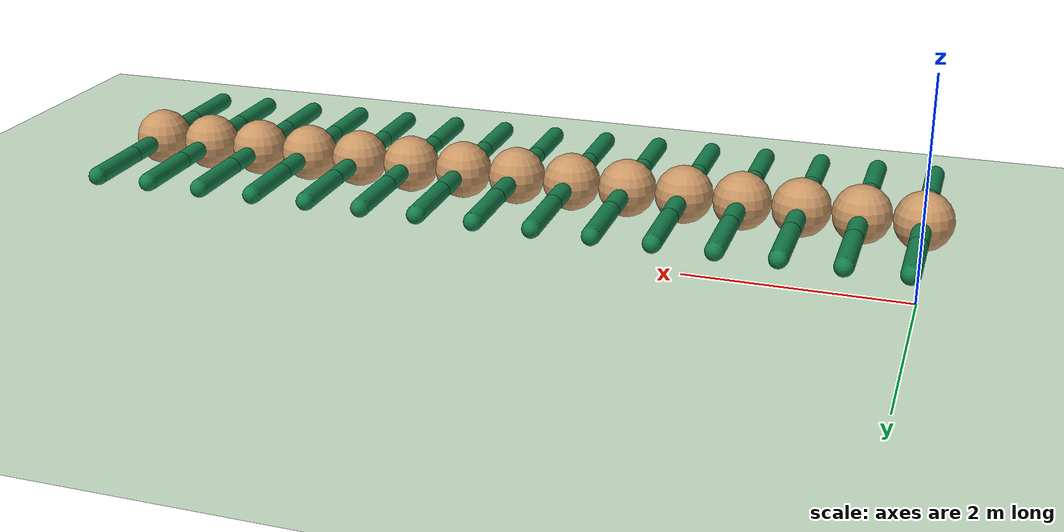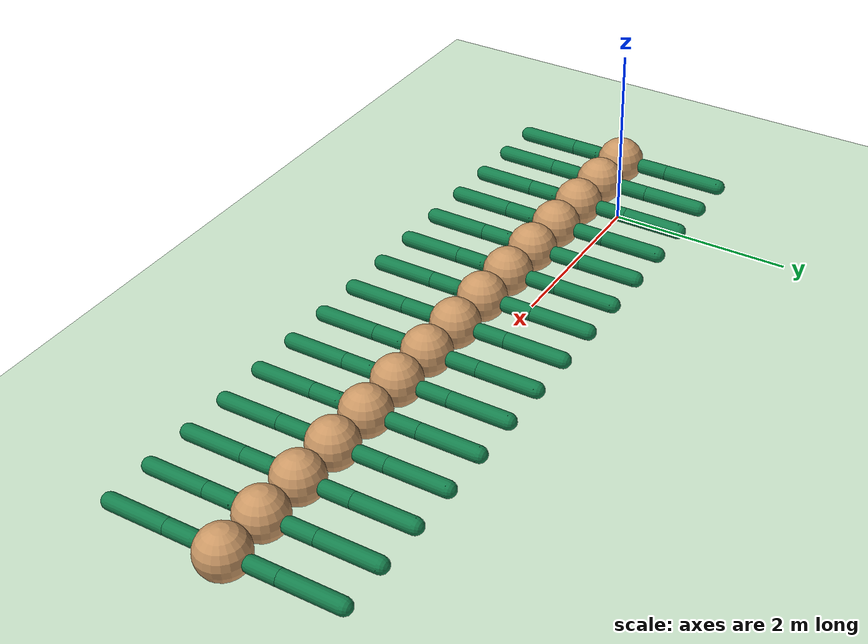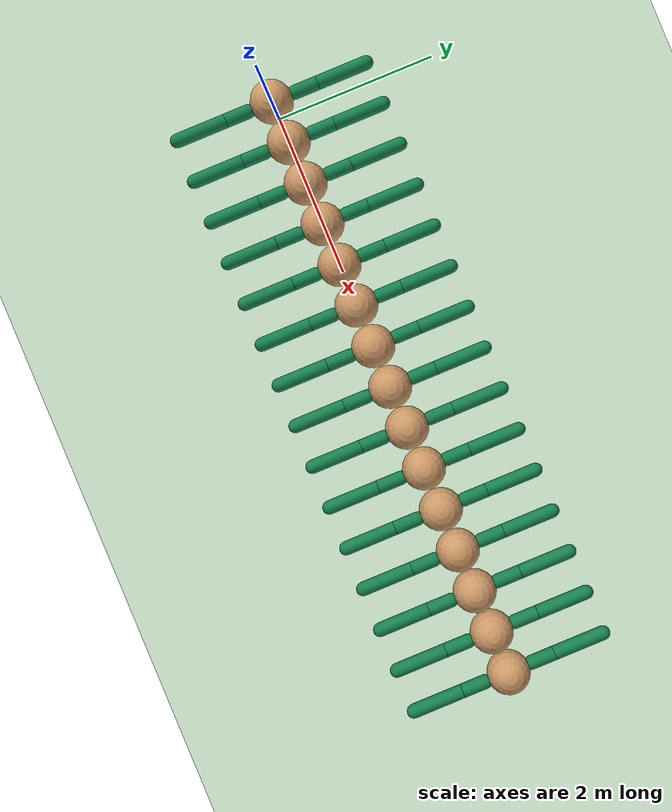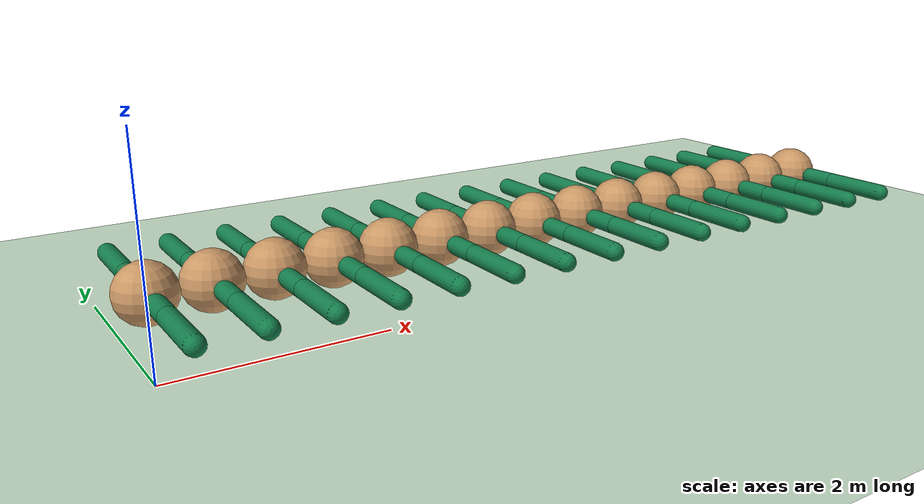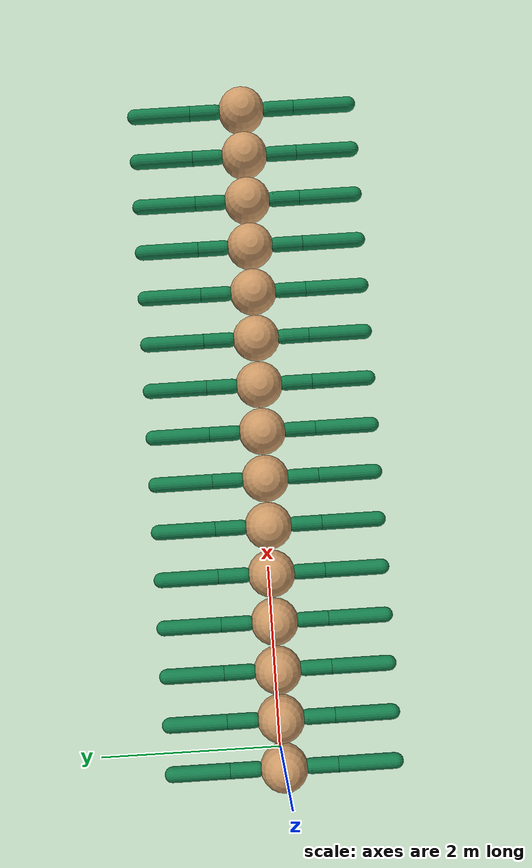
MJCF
<mujoco model="centipede">
    <compiler angle="degree" coordinate="local" inertiafromgeom="true"/>

    <option integrator="RK4" timestep="0.01"/>

    <default>
        <joint armature="1" damping="1" limited="true"/>
        <geom conaffinity="0" condim="3" density="25.0" friction="1.5 0.1 0.1" margin="0.01" rgba="0.8 0.6 0.4 1"/>
    </default>

    <asset>
        <texture builtin="gradient" height="100" rgb1="1 1 1" rgb2="0 0 0" type="skybox" width="100"/>
        <texture builtin="flat" height="1278" mark="cross" markrgb="1 1 1" name="texgeom" random="0.01"
                 rgb1="0.8 0.6 0.4" rgb2="0.8 0.6 0.4" type="cube" width="127"/>
        <texture builtin="checker" height="100" name="texplane" rgb1="0 0 0" rgb2="0.8 0.8 0.8" type="2d" width="100"/>
        <material name="MatPlane" reflectance="0.5" shininess="1" specular="1" texrepeat="60 60" texture="texplane"/>
        <material name="geom" texture="texgeom" texuniform="true"/>
    </asset>

    <worldbody>
        <light cutoff="100" diffuse="1 1 1" dir="-0 0 -1.3" directional="true" exponent="1" pos="0 0 1.3"
               specular=".1 .1 .1"/>
        <geom conaffinity="1" condim="3" material="MatPlane" name="floor" pos="0 0 0" rgba="0.8 0.9 0.8 1"
              size="40 40 40" type="plane"/>
        <body name="torso_0" pos="0 0 0.75">
            <geom name="torsoGeom_0" pos="0 0 0" size="0.25" type="sphere" density="100"/>
            <joint armature="0" damping="0" limited="false" margin="0.01" name="root" pos="0 0 0" type="free"/>

            <body name="legbody_0" pos="0.0 -0.28 0">
                <joint axis="0 0 1" name="lefthip_0" pos="0.0 0.0 0.0" range="-40 40" type="hinge"/>
                <geom fromto="0.0 0.0 0.0 0.0 -0.28 0.0" name="legGeom_0" size="0.08" type="capsule"
                      rgba=".08 .5 .3 1"/>
                <body pos="0 -0.28 0" name="frontFoot_0">
                    <joint axis="1 0 0" name="ankle_0" pos="0.0 0.0 0.0" range="30 100" type="hinge"/>
                    <geom fromto="0.0 0.0 0.0 0 -0.6 0.0" name="ankleGeom_0" size="0.08" type="capsule"
                          rgba=".08 .5 .3 1"/>
                </body>
            </body>

            <body name="legbody_1" pos="0.0 0.28 0">
                <joint axis="0 0 1" name="righthip_1" pos="0.0 0.0 0.0" range="-40 40" type="hinge"/>
                <geom fromto="0.0 0.0 0.0 0.0 0.28 0.0" name="legGeom_1" size="0.08" type="capsule" rgba=".08 .5 .3 1"/>
                <body pos="0 0.28 0" name="frontFoot_1">
                    <joint axis="-1 0 0" name="ankle_1" pos="0.0 0.0 0.0" range="30 100" type="hinge"/>
                    <geom fromto="0.0 0.0 0.0 0 0.6 0.0" name="ankleGeom_1" size="0.08" type="capsule"
                          rgba=".08 .5 .3 1"/>
                </body>
            </body>

            <body name="torso_1" pos="0.50 0 0">
                <geom name="torsoGeom_1" pos="0 0 0" size="0.25" type="sphere" density="100"/>
                <joint axis="0 0 1" name="body_1" pos="-0.25 0.0 0.0" range="-20 20" type="hinge"/>
                <joint axis="0 1 0" name="bodyupdown_1" pos="-0.25 0.0 0.0" range="-10 30" type="hinge"/>

                <body name="legbody_2" pos="0.0 -0.28 0">
                    <joint axis="0 0 1" name="lefthip_2" pos="0.0 0.0 0.0" range="-40 40" type="hinge"/>
                    <geom fromto="0.0 0.0 0.0 0.0 -0.28 0.0" name="legGeom_2" size="0.08" type="capsule"
                          rgba=".08 .5 .3 1"/>
                    <body pos="0 -0.28 0" name="frontFoot_2">
                        <joint axis="1 0 0" name="ankle_2" pos="0.0 0.0 0.0" range="30 100" type="hinge"/>
                        <geom fromto="0.0 0.0 0.0 0 -0.6 0.0" name="ankleGeom_2" size="0.08" type="capsule"
                              rgba=".08 .5 .3 1"/>
                    </body>
                </body>

                <body name="legbody_3" pos="0.0 0.28 0">
                    <joint axis="0 0 1" name="righthip_3" pos="0.0 0.0 0.0" range="-40 40" type="hinge"/>
                    <geom fromto="0.0 0.0 0.0 0.0 0.28 0.0" name="legGeom_3" size="0.08" type="capsule"
                          rgba=".08 .5 .3 1"/>
                    <body pos="0 0.28 0" name="frontFoot_3">
                        <joint axis="-1 0 0" name="ankle_3" pos="0.0 0.0 0.0" range="30 100" type="hinge"/>
                        <geom fromto="0.0 0.0 0.0 0 0.6 0.0" name="ankleGeom_3" size="0.08" type="capsule"
                              rgba=".08 .5 .3 1"/>
                    </body>
                </body>

                <body name="torso_2" pos="0.50 0 0">
                    <geom name="torsoGeom_2" pos="0 0 0" size="0.25" type="sphere" density="100"/>
                    <joint axis="0 0 1" name="body_2" pos="-0.25 0.0 0.0" range="-20 20" type="hinge"/>
                    <joint axis="0 1 0" name="bodyupdown_2" pos="-0.25 0.0 0.0" range="-10 30" type="hinge"/>

                    <body name="legbody_4" pos="0.0 -0.28 0">
                        <joint axis="0 0 1" name="lefthip_4" pos="0.0 0.0 0.0" range="-40 40" type="hinge"/>
                        <geom fromto="0.0 0.0 0.0 0.0 -0.28 0.0" name="legGeom_4" size="0.08" type="capsule"
                              rgba=".08 .5 .3 1"/>
                        <body pos="0 -0.28 0" name="frontFoot_4">
                            <joint axis="1 0 0" name="ankle_4" pos="0.0 0.0 0.0" range="30 100" type="hinge"/>
                            <geom fromto="0.0 0.0 0.0 0 -0.6 0.0" name="ankleGeom_4" size="0.08" type="capsule"
                                  rgba=".08 .5 .3 1"/>
                        </body>
                    </body>

                    <body name="legbody_5" pos="0.0 0.28 0">
                        <joint axis="0 0 1" name="righthip_5" pos="0.0 0.0 0.0" range="-40 40" type="hinge"/>
                        <geom fromto="0.0 0.0 0.0 0.0 0.28 0.0" name="legGeom_5" size="0.08" type="capsule"
                              rgba=".08 .5 .3 1"/>
                        <body pos="0 0.28 0" name="frontFoot_5">
                            <joint axis="-1 0 0" name="ankle_5" pos="0.0 0.0 0.0" range="30 100" type="hinge"/>
                            <geom fromto="0.0 0.0 0.0 0 0.6 0.0" name="ankleGeom_5" size="0.08" type="capsule"
                                  rgba=".08 .5 .3 1"/>
                        </body>
                    </body>

                    <body name="torso_3" pos="0.50 0 0">
                        <geom name="torsoGeom_3" pos="0 0 0" size="0.25" type="sphere" density="100"/>
                        <joint axis="0 0 1" name="body_3" pos="-0.25 0.0 0.0" range="-20 20" type="hinge"/>
                        <joint axis="0 1 0" name="bodyupdown_3" pos="-0.25 0.0 0.0" range="-10 30" type="hinge"/>

                        <body name="legbody_6" pos="0.0 -0.28 0">
                            <joint axis="0 0 1" name="lefthip_6" pos="0.0 0.0 0.0" range="-40 40" type="hinge"/>
                            <geom fromto="0.0 0.0 0.0 0.0 -0.28 0.0" name="legGeom_6" size="0.08" type="capsule"
                                  rgba=".08 .5 .3 1"/>
                            <body pos="0 -0.28 0" name="frontFoot_6">
                                <joint axis="1 0 0" name="ankle_6" pos="0.0 0.0 0.0" range="30 100" type="hinge"/>
                                <geom fromto="0.0 0.0 0.0 0 -0.6 0.0" name="ankleGeom_6" size="0.08" type="capsule"
                                      rgba=".08 .5 .3 1"/>
                            </body>
                        </body>

                        <body name="legbody_7" pos="0.0 0.28 0">
                            <joint axis="0 0 1" name="righthip_7" pos="0.0 0.0 0.0" range="-40 40" type="hinge"/>
                            <geom fromto="0.0 0.0 0.0 0.0 0.28 0.0" name="legGeom_7" size="0.08" type="capsule"
                                  rgba=".08 .5 .3 1"/>
                            <body pos="0 0.28 0" name="frontFoot_7">
                                <joint axis="-1 0 0" name="ankle_7" pos="0.0 0.0 0.0" range="30 100" type="hinge"/>
                                <geom fromto="0.0 0.0 0.0 0 0.6 0.0" name="ankleGeom_7" size="0.08" type="capsule"
                                      rgba=".08 .5 .3 1"/>
                            </body>
                        </body>

                        <body name="torso_4" pos="0.50 0 0">
                            <geom name="torsoGeom_4" pos="0 0 0" size="0.25" type="sphere" density="100"/>
                            <joint axis="0 0 1" name="body_4" pos="-0.25 0.0 0.0" range="-20 20" type="hinge"/>
                            <joint axis="0 1 0" name="bodyupdown_4" pos="-0.25 0.0 0.0" range="-10 30" type="hinge"/>

                            <body name="legbody_8" pos="0.0 -0.28 0">
                                <joint axis="0 0 1" name="lefthip_8" pos="0.0 0.0 0.0" range="-40 40" type="hinge"/>
                                <geom fromto="0.0 0.0 0.0 0.0 -0.28 0.0" name="legGeom_8" size="0.08" type="capsule"
                                      rgba=".08 .5 .3 1"/>
                                <body pos="0 -0.28 0" name="frontFoot_8">
                                    <joint axis="1 0 0" name="ankle_8" pos="0.0 0.0 0.0" range="30 100" type="hinge"/>
                                    <geom fromto="0.0 0.0 0.0 0 -0.6 0.0" name="ankleGeom_8" size="0.08" type="capsule"
                                          rgba=".08 .5 .3 1"/>
                                </body>
                            </body>

                            <body name="legbody_9" pos="0.0 0.28 0">
                                <joint axis="0 0 1" name="righthip_9" pos="0.0 0.0 0.0" range="-40 40" type="hinge"/>
                                <geom fromto="0.0 0.0 0.0 0.0 0.28 0.0" name="legGeom_9" size="0.08" type="capsule"
                                      rgba=".08 .5 .3 1"/>
                                <body pos="0 0.28 0" name="frontFoot_9">
                                    <joint axis="-1 0 0" name="ankle_9" pos="0.0 0.0 0.0" range="30 100" type="hinge"/>
                                    <geom fromto="0.0 0.0 0.0 0 0.6 0.0" name="ankleGeom_9" size="0.08" type="capsule"
                                          rgba=".08 .5 .3 1"/>
                                </body>
                            </body>

                            <body name="torso_5" pos="0.50 0 0">
                                <geom name="torsoGeom_5" pos="0 0 0" size="0.25" type="sphere" density="100"/>
                                <joint axis="0 0 1" name="body_5" pos="-0.25 0.0 0.0" range="-20 20" type="hinge"/>
                                <joint axis="0 1 0" name="bodyupdown_5" pos="-0.25 0.0 0.0" range="-10 30"
                                       type="hinge"/>

                                <body name="legbody_10" pos="0.0 -0.28 0">
                                    <joint axis="0 0 1" name="lefthip_10" pos="0.0 0.0 0.0" range="-40 40"
                                           type="hinge"/>
                                    <geom fromto="0.0 0.0 0.0 0.0 -0.28 0.0" name="legGeom_10" size="0.08"
                                          type="capsule" rgba=".08 .5 .3 1"/>
                                    <body pos="0 -0.28 0" name="frontFoot_10">
                                        <joint axis="1 0 0" name="ankle_10" pos="0.0 0.0 0.0" range="30 100"
                                               type="hinge"/>
                                        <geom fromto="0.0 0.0 0.0 0 -0.6 0.0" name="ankleGeom_10" size="0.08"
                                              type="capsule" rgba=".08 .5 .3 1"/>
                                    </body>
                                </body>

                                <body name="legbody_11" pos="0.0 0.28 0">
                                    <joint axis="0 0 1" name="righthip_11" pos="0.0 0.0 0.0" range="-40 40"
                                           type="hinge"/>
                                    <geom fromto="0.0 0.0 0.0 0.0 0.28 0.0" name="legGeom_11" size="0.08" type="capsule"
                                          rgba=".08 .5 .3 1"/>
                                    <body pos="0 0.28 0" name="frontFoot_11">
                                        <joint axis="-1 0 0" name="ankle_11" pos="0.0 0.0 0.0" range="30 100"
                                               type="hinge"/>
                                        <geom fromto="0.0 0.0 0.0 0 0.6 0.0" name="ankleGeom_11" size="0.08"
                                              type="capsule" rgba=".08 .5 .3 1"/>
                                    </body>
                                </body>

                                <body name="torso_6" pos="0.50 0 0">
                                    <geom name="torsoGeom_6" pos="0 0 0" size="0.25" type="sphere" density="100"/>
                                    <joint axis="0 0 1" name="body_6" pos="-0.25 0.0 0.0" range="-20 20" type="hinge"/>
                                    <joint axis="0 1 0" name="bodyupdown_6" pos="-0.25 0.0 0.0" range="-10 30"
                                           type="hinge"/>

                                    <body name="legbody_12" pos="0.0 -0.28 0">
                                        <joint axis="0 0 1" name="lefthip_12" pos="0.0 0.0 0.0" range="-40 40"
                                               type="hinge"/>
                                        <geom fromto="0.0 0.0 0.0 0.0 -0.28 0.0" name="legGeom_12" size="0.08"
                                              type="capsule" rgba=".08 .5 .3 1"/>
                                        <body pos="0 -0.28 0" name="frontFoot_12">
                                            <joint axis="1 0 0" name="ankle_12" pos="0.0 0.0 0.0" range="30 100"
                                                   type="hinge"/>
                                            <geom fromto="0.0 0.0 0.0 0 -0.6 0.0" name="ankleGeom_12" size="0.08"
                                                  type="capsule" rgba=".08 .5 .3 1"/>
                                        </body>
                                    </body>

                                    <body name="legbody_13" pos="0.0 0.28 0">
                                        <joint axis="0 0 1" name="righthip_13" pos="0.0 0.0 0.0" range="-40 40"
                                               type="hinge"/>
                                        <geom fromto="0.0 0.0 0.0 0.0 0.28 0.0" name="legGeom_13" size="0.08"
                                              type="capsule" rgba=".08 .5 .3 1"/>
                                        <body pos="0 0.28 0" name="frontFoot_13">
                                            <joint axis="-1 0 0" name="ankle_13" pos="0.0 0.0 0.0" range="30 100"
                                                   type="hinge"/>
                                            <geom fromto="0.0 0.0 0.0 0 0.6 0.0" name="ankleGeom_13" size="0.08"
                                                  type="capsule" rgba=".08 .5 .3 1"/>
                                        </body>
                                    </body>

                                    <body name="torso_7" pos="0.50 0 0">
                                        <geom name="torsoGeom_7" pos="0 0 0" size="0.25" type="sphere" density="100"/>
                                        <joint axis="0 0 1" name="body_7" pos="-0.25 0.0 0.0" range="-20 20"
                                               type="hinge"/>
                                        <joint axis="0 1 0" name="bodyupdown_7" pos="-0.25 0.0 0.0" range="-10 30"
                                               type="hinge"/>

                                        <body name="legbody_14" pos="0.0 -0.28 0">
                                            <joint axis="0 0 1" name="lefthip_14" pos="0.0 0.0 0.0" range="-40 40"
                                                   type="hinge"/>
                                            <geom fromto="0.0 0.0 0.0 0.0 -0.28 0.0" name="legGeom_14" size="0.08"
                                                  type="capsule" rgba=".08 .5 .3 1"/>
                                            <body pos="0 -0.28 0" name="frontFoot_14">
                                                <joint axis="1 0 0" name="ankle_14" pos="0.0 0.0 0.0" range="30 100"
                                                       type="hinge"/>
                                                <geom fromto="0.0 0.0 0.0 0 -0.6 0.0" name="ankleGeom_14" size="0.08"
                                                      type="capsule" rgba=".08 .5 .3 1"/>
                                            </body>
                                        </body>

                                        <body name="legbody_15" pos="0.0 0.28 0">
                                            <joint axis="0 0 1" name="righthip_15" pos="0.0 0.0 0.0" range="-40 40"
                                                   type="hinge"/>
                                            <geom fromto="0.0 0.0 0.0 0.0 0.28 0.0" name="legGeom_15" size="0.08"
                                                  type="capsule" rgba=".08 .5 .3 1"/>
                                            <body pos="0 0.28 0" name="frontFoot_15">
                                                <joint axis="-1 0 0" name="ankle_15" pos="0.0 0.0 0.0" range="30 100"
                                                       type="hinge"/>
                                                <geom fromto="0.0 0.0 0.0 0 0.6 0.0" name="ankleGeom_15" size="0.08"
                                                      type="capsule" rgba=".08 .5 .3 1"/>
                                            </body>
                                        </body>

                                        <body name="torso_8" pos="0.50 0 0">
                                            <geom name="torsoGeom_8" pos="0 0 0" size="0.25" type="sphere"
                                                  density="100"/>
                                            <joint axis="0 0 1" name="body_8" pos="-0.25 0.0 0.0" range="-20 20"
                                                   type="hinge"/>
                                            <joint axis="0 1 0" name="bodyupdown_8" pos="-0.25 0.0 0.0" range="-10 30"
                                                   type="hinge"/>

                                            <body name="legbody_16" pos="0.0 -0.28 0">
                                                <joint axis="0 0 1" name="lefthip_16" pos="0.0 0.0 0.0" range="-40 40"
                                                       type="hinge"/>
                                                <geom fromto="0.0 0.0 0.0 0.0 -0.28 0.0" name="legGeom_16" size="0.08"
                                                      type="capsule" rgba=".08 .5 .3 1"/>
                                                <body pos="0 -0.28 0" name="frontFoot_16">
                                                    <joint axis="1 0 0" name="ankle_16" pos="0.0 0.0 0.0" range="30 100"
                                                           type="hinge"/>
                                                    <geom fromto="0.0 0.0 0.0 0 -0.6 0.0" name="ankleGeom_16"
                                                          size="0.08" type="capsule" rgba=".08 .5 .3 1"/>
                                                </body>
                                            </body>

                                            <body name="legbody_17" pos="0.0 0.28 0">
                                                <joint axis="0 0 1" name="righthip_17" pos="0.0 0.0 0.0" range="-40 40"
                                                       type="hinge"/>
                                                <geom fromto="0.0 0.0 0.0 0.0 0.28 0.0" name="legGeom_17" size="0.08"
                                                      type="capsule" rgba=".08 .5 .3 1"/>
                                                <body pos="0 0.28 0" name="frontFoot_17">
                                                    <joint axis="-1 0 0" name="ankle_17" pos="0.0 0.0 0.0"
                                                           range="30 100" type="hinge"/>
                                                    <geom fromto="0.0 0.0 0.0 0 0.6 0.0" name="ankleGeom_17" size="0.08"
                                                          type="capsule" rgba=".08 .5 .3 1"/>
                                                </body>
                                            </body>

                                            <body name="torso_9" pos="0.50 0 0">
                                                <geom name="torsoGeom_9" pos="0 0 0" size="0.25" type="sphere"
                                                      density="100"/>
                                                <joint axis="0 0 1" name="body_9" pos="-0.25 0.0 0.0" range="-20 20"
                                                       type="hinge"/>
                                                <joint axis="0 1 0" name="bodyupdown_9" pos="-0.25 0.0 0.0"
                                                       range="-10 30" type="hinge"/>

                                                <body name="legbody_18" pos="0.0 -0.28 0">
                                                    <joint axis="0 0 1" name="lefthip_18" pos="0.0 0.0 0.0"
                                                           range="-40 40" type="hinge"/>
                                                    <geom fromto="0.0 0.0 0.0 0.0 -0.28 0.0" name="legGeom_18"
                                                          size="0.08" type="capsule" rgba=".08 .5 .3 1"/>
                                                    <body pos="0 -0.28 0" name="frontFoot_18">
                                                        <joint axis="1 0 0" name="ankle_18" pos="0.0 0.0 0.0"
                                                               range="30 100" type="hinge"/>
                                                        <geom fromto="0.0 0.0 0.0 0 -0.6 0.0" name="ankleGeom_18"
                                                              size="0.08" type="capsule" rgba=".08 .5 .3 1"/>
                                                    </body>
                                                </body>

                                                <body name="legbody_19" pos="0.0 0.28 0">
                                                    <joint axis="0 0 1" name="righthip_19" pos="0.0 0.0 0.0"
                                                           range="-40 40" type="hinge"/>
                                                    <geom fromto="0.0 0.0 0.0 0.0 0.28 0.0" name="legGeom_19"
                                                          size="0.08" type="capsule" rgba=".08 .5 .3 1"/>
                                                    <body pos="0 0.28 0" name="frontFoot_19">
                                                        <joint axis="-1 0 0" name="ankle_19" pos="0.0 0.0 0.0"
                                                               range="30 100" type="hinge"/>
                                                        <geom fromto="0.0 0.0 0.0 0 0.6 0.0" name="ankleGeom_19"
                                                              size="0.08" type="capsule" rgba=".08 .5 .3 1"/>
                                                    </body>
                                                </body>

                                                <body name="torso_10" pos="0.50 0 0">
                                                    <geom name="torsoGeom_10" pos="0 0 0" size="0.25" type="sphere"
                                                          density="100"/>
                                                    <joint axis="0 0 1" name="body_10" pos="-0.25 0.0 0.0"
                                                           range="-20 20" type="hinge"/>
                                                    <joint axis="0 1 0" name="bodyupdown_10" pos="-0.25 0.0 0.0"
                                                           range="-10 30" type="hinge"/>

                                                    <body name="legbody_20" pos="0.0 -0.28 0">
                                                        <joint axis="0 0 1" name="lefthip_20" pos="0.0 0.0 0.0"
                                                               range="-40 40" type="hinge"/>
                                                        <geom fromto="0.0 0.0 0.0 0.0 -0.28 0.0" name="legGeom_20"
                                                              size="0.08" type="capsule" rgba=".08 .5 .3 1"/>
                                                        <body pos="0 -0.28 0" name="frontFoot_20">
                                                            <joint axis="1 0 0" name="ankle_20" pos="0.0 0.0 0.0"
                                                                   range="30 100" type="hinge"/>
                                                            <geom fromto="0.0 0.0 0.0 0 -0.6 0.0" name="ankleGeom_20"
                                                                  size="0.08" type="capsule" rgba=".08 .5 .3 1"/>
                                                        </body>
                                                    </body>

                                                    <body name="legbody_21" pos="0.0 0.28 0">
                                                        <joint axis="0 0 1" name="righthip_21" pos="0.0 0.0 0.0"
                                                               range="-40 40" type="hinge"/>
                                                        <geom fromto="0.0 0.0 0.0 0.0 0.28 0.0" name="legGeom_21"
                                                              size="0.08" type="capsule" rgba=".08 .5 .3 1"/>
                                                        <body pos="0 0.28 0" name="frontFoot_21">
                                                            <joint axis="-1 0 0" name="ankle_21" pos="0.0 0.0 0.0"
                                                                   range="30 100" type="hinge"/>
                                                            <geom fromto="0.0 0.0 0.0 0 0.6 0.0" name="ankleGeom_21"
                                                                  size="0.08" type="capsule" rgba=".08 .5 .3 1"/>
                                                        </body>
                                                    </body>

                                                    <body name="torso_11" pos="0.50 0 0">
                                                        <geom name="torsoGeom_11" pos="0 0 0" size="0.25" type="sphere"
                                                              density="100"/>
                                                        <joint axis="0 0 1" name="body_11" pos="-0.25 0.0 0.0"
                                                               range="-20 20" type="hinge"/>
                                                        <joint axis="0 1 0" name="bodyupdown_11" pos="-0.25 0.0 0.0"
                                                               range="-10 30" type="hinge"/>

                                                        <body name="legbody_22" pos="0.0 -0.28 0">
                                                            <joint axis="0 0 1" name="lefthip_22" pos="0.0 0.0 0.0"
                                                                   range="-40 40" type="hinge"/>
                                                            <geom fromto="0.0 0.0 0.0 0.0 -0.28 0.0" name="legGeom_22"
                                                                  size="0.08" type="capsule" rgba=".08 .5 .3 1"/>
                                                            <body pos="0 -0.28 0" name="frontFoot_22">
                                                                <joint axis="1 0 0" name="ankle_22" pos="0.0 0.0 0.0"
                                                                       range="30 100" type="hinge"/>
                                                                <geom fromto="0.0 0.0 0.0 0 -0.6 0.0"
                                                                      name="ankleGeom_22" size="0.08" type="capsule"
                                                                      rgba=".08 .5 .3 1"/>
                                                            </body>
                                                        </body>

                                                        <body name="legbody_23" pos="0.0 0.28 0">
                                                            <joint axis="0 0 1" name="righthip_23" pos="0.0 0.0 0.0"
                                                                   range="-40 40" type="hinge"/>
                                                            <geom fromto="0.0 0.0 0.0 0.0 0.28 0.0" name="legGeom_23"
                                                                  size="0.08" type="capsule" rgba=".08 .5 .3 1"/>
                                                            <body pos="0 0.28 0" name="frontFoot_23">
                                                                <joint axis="-1 0 0" name="ankle_23" pos="0.0 0.0 0.0"
                                                                       range="30 100" type="hinge"/>
                                                                <geom fromto="0.0 0.0 0.0 0 0.6 0.0" name="ankleGeom_23"
                                                                      size="0.08" type="capsule" rgba=".08 .5 .3 1"/>
                                                            </body>
                                                        </body>

                                                        <body name="torso_12" pos="0.50 0 0">
                                                            <geom name="torsoGeom_12" pos="0 0 0" size="0.25"
                                                                  type="sphere" density="100"/>
                                                            <joint axis="0 0 1" name="body_12" pos="-0.25 0.0 0.0"
                                                                   range="-20 20" type="hinge"/>
                                                            <joint axis="0 1 0" name="bodyupdown_12" pos="-0.25 0.0 0.0"
                                                                   range="-10 30" type="hinge"/>

                                                            <body name="legbody_24" pos="0.0 -0.28 0">
                                                                <joint axis="0 0 1" name="lefthip_24" pos="0.0 0.0 0.0"
                                                                       range="-40 40" type="hinge"/>
                                                                <geom fromto="0.0 0.0 0.0 0.0 -0.28 0.0"
                                                                      name="legGeom_24" size="0.08" type="capsule"
                                                                      rgba=".08 .5 .3 1"/>
                                                                <body pos="0 -0.28 0" name="frontFoot_24">
                                                                    <joint axis="1 0 0" name="ankle_24"
                                                                           pos="0.0 0.0 0.0" range="30 100"
                                                                           type="hinge"/>
                                                                    <geom fromto="0.0 0.0 0.0 0 -0.6 0.0"
                                                                          name="ankleGeom_24" size="0.08" type="capsule"
                                                                          rgba=".08 .5 .3 1"/>
                                                                </body>
                                                            </body>

                                                            <body name="legbody_25" pos="0.0 0.28 0">
                                                                <joint axis="0 0 1" name="righthip_25" pos="0.0 0.0 0.0"
                                                                       range="-40 40" type="hinge"/>
                                                                <geom fromto="0.0 0.0 0.0 0.0 0.28 0.0"
                                                                      name="legGeom_25" size="0.08" type="capsule"
                                                                      rgba=".08 .5 .3 1"/>
                                                                <body pos="0 0.28 0" name="frontFoot_25">
                                                                    <joint axis="-1 0 0" name="ankle_25"
                                                                           pos="0.0 0.0 0.0" range="30 100"
                                                                           type="hinge"/>
                                                                    <geom fromto="0.0 0.0 0.0 0 0.6 0.0"
                                                                          name="ankleGeom_25" size="0.08" type="capsule"
                                                                          rgba=".08 .5 .3 1"/>
                                                                </body>
                                                            </body>

                                                            <body name="torso_13" pos="0.50 0 0">
                                                                <geom name="torsoGeom_13" pos="0 0 0" size="0.25"
                                                                      type="sphere" density="100"/>
                                                                <joint axis="0 0 1" name="body_13" pos="-0.25 0.0 0.0"
                                                                       range="-20 20" type="hinge"/>
                                                                <joint axis="0 1 0" name="bodyupdown_13"
                                                                       pos="-0.25 0.0 0.0" range="-10 30" type="hinge"/>

                                                                <body name="legbody_26" pos="0.0 -0.28 0">
                                                                    <joint axis="0 0 1" name="lefthip_26"
                                                                           pos="0.0 0.0 0.0" range="-40 40"
                                                                           type="hinge"/>
                                                                    <geom fromto="0.0 0.0 0.0 0.0 -0.28 0.0"
                                                                          name="legGeom_26" size="0.08" type="capsule"
                                                                          rgba=".08 .5 .3 1"/>
                                                                    <body pos="0 -0.28 0" name="frontFoot_26">
                                                                        <joint axis="1 0 0" name="ankle_26"
                                                                               pos="0.0 0.0 0.0" range="30 100"
                                                                               type="hinge"/>
                                                                        <geom fromto="0.0 0.0 0.0 0 -0.6 0.0"
                                                                              name="ankleGeom_26" size="0.08"
                                                                              type="capsule" rgba=".08 .5 .3 1"/>
                                                                    </body>
                                                                </body>

                                                                <body name="legbody_27" pos="0.0 0.28 0">
                                                                    <joint axis="0 0 1" name="righthip_27"
                                                                           pos="0.0 0.0 0.0" range="-40 40"
                                                                           type="hinge"/>
                                                                    <geom fromto="0.0 0.0 0.0 0.0 0.28 0.0"
                                                                          name="legGeom_27" size="0.08" type="capsule"
                                                                          rgba=".08 .5 .3 1"/>
                                                                    <body pos="0 0.28 0" name="frontFoot_27">
                                                                        <joint axis="-1 0 0" name="ankle_27"
                                                                               pos="0.0 0.0 0.0" range="30 100"
                                                                               type="hinge"/>
                                                                        <geom fromto="0.0 0.0 0.0 0 0.6 0.0"
                                                                              name="ankleGeom_27" size="0.08"
                                                                              type="capsule" rgba=".08 .5 .3 1"/>
                                                                    </body>
                                                                </body>

                                                                <body name="torso_14" pos="0.50 0 0">
                                                                    <geom name="torsoGeom_14" pos="0 0 0" size="0.25"
                                                                          type="sphere" density="100"/>
                                                                    <joint axis="0 0 1" name="body_14"
                                                                           pos="-0.25 0.0 0.0" range="-20 20"
                                                                           type="hinge"/>
                                                                    <joint axis="0 1 0" name="bodyupdown_14"
                                                                           pos="-0.25 0.0 0.0" range="-10 30"
                                                                           type="hinge"/>

                                                                    <body name="legbody_28" pos="0.0 -0.28 0">
                                                                        <joint axis="0 0 1" name="lefthip_28"
                                                                               pos="0.0 0.0 0.0" range="-40 40"
                                                                               type="hinge"/>
                                                                        <geom fromto="0.0 0.0 0.0 0.0 -0.28 0.0"
                                                                              name="legGeom_28" size="0.08"
                                                                              type="capsule" rgba=".08 .5 .3 1"/>
                                                                        <body pos="0 -0.28 0" name="frontFoot_28">
                                                                            <joint axis="1 0 0" name="ankle_28"
                                                                                   pos="0.0 0.0 0.0" range="30 100"
                                                                                   type="hinge"/>
                                                                            <geom fromto="0.0 0.0 0.0 0 -0.6 0.0"
                                                                                  name="ankleGeom_28" size="0.08"
                                                                                  type="capsule" rgba=".08 .5 .3 1"/>
                                                                        </body>
                                                                    </body>

                                                                    <body name="legbody_29" pos="0.0 0.28 0">
                                                                        <joint axis="0 0 1" name="righthip_29"
                                                                               pos="0.0 0.0 0.0" range="-40 40"
                                                                               type="hinge"/>
                                                                        <geom fromto="0.0 0.0 0.0 0.0 0.28 0.0"
                                                                              name="legGeom_29" size="0.08"
                                                                              type="capsule" rgba=".08 .5 .3 1"/>
                                                                        <body pos="0 0.28 0" name="frontFoot_29">
                                                                            <joint axis="-1 0 0" name="ankle_29"
                                                                                   pos="0.0 0.0 0.0" range="30 100"
                                                                                   type="hinge"/>
                                                                            <geom fromto="0.0 0.0 0.0 0 0.6 0.0"
                                                                                  name="ankleGeom_29" size="0.08"
                                                                                  type="capsule" rgba=".08 .5 .3 1"/>
                                                                        </body>
                                                                    </body>

                                                                </body>
                                                            </body>
                                                        </body>
                                                    </body>
                                                </body>
                                            </body>
                                        </body>
                                    </body>
                                </body>
                            </body>
                        </body>
                    </body>
                </body>
            </body>

        </body>
    </worldbody>
    <actuator>
        <motor ctrllimited="true" ctrlrange="-1.0 1.0" joint="lefthip_0" gear="150"/>
        <motor ctrllimited="true" ctrlrange="-1.0 1.0" joint="ankle_0" gear="150"/>
        <motor ctrllimited="true" ctrlrange="-1.0 1.0" joint="righthip_1" gear="150"/>
        <motor ctrllimited="true" ctrlrange="-1.0 1.0" joint="ankle_1" gear="150"/>
        <motor ctrllimited="true" ctrlrange="-1.0 1.0" joint="lefthip_2" gear="150"/>
        <motor ctrllimited="true" ctrlrange="-1.0 1.0" joint="ankle_2" gear="150"/>
        <motor ctrllimited="true" ctrlrange="-1.0 1.0" joint="righthip_3" gear="150"/>
        <motor ctrllimited="true" ctrlrange="-1.0 1.0" joint="ankle_3" gear="150"/>
        <motor ctrllimited="true" ctrlrange="-1.0 1.0" joint="body_1" gear="100"/>
        <motor ctrllimited="true" ctrlrange="-1.0 1.0" joint="bodyupdown_1" gear="100"/>
        <motor ctrllimited="true" ctrlrange="-1.0 1.0" joint="lefthip_4" gear="150"/>
        <motor ctrllimited="true" ctrlrange="-1.0 1.0" joint="ankle_4" gear="150"/>
        <motor ctrllimited="true" ctrlrange="-1.0 1.0" joint="righthip_5" gear="150"/>
        <motor ctrllimited="true" ctrlrange="-1.0 1.0" joint="ankle_5" gear="150"/>
        <motor ctrllimited="true" ctrlrange="-1.0 1.0" joint="body_2" gear="100"/>
        <motor ctrllimited="true" ctrlrange="-1.0 1.0" joint="bodyupdown_2" gear="100"/>
        <motor ctrllimited="true" ctrlrange="-1.0 1.0" joint="lefthip_6" gear="150"/>
        <motor ctrllimited="true" ctrlrange="-1.0 1.0" joint="ankle_6" gear="150"/>
        <motor ctrllimited="true" ctrlrange="-1.0 1.0" joint="righthip_7" gear="150"/>
        <motor ctrllimited="true" ctrlrange="-1.0 1.0" joint="ankle_7" gear="150"/>
        <motor ctrllimited="true" ctrlrange="-1.0 1.0" joint="body_3" gear="100"/>
        <motor ctrllimited="true" ctrlrange="-1.0 1.0" joint="bodyupdown_3" gear="100"/>
        <motor ctrllimited="true" ctrlrange="-1.0 1.0" joint="lefthip_8" gear="150"/>
        <motor ctrllimited="true" ctrlrange="-1.0 1.0" joint="ankle_8" gear="150"/>
        <motor ctrllimited="true" ctrlrange="-1.0 1.0" joint="righthip_9" gear="150"/>
        <motor ctrllimited="true" ctrlrange="-1.0 1.0" joint="ankle_9" gear="150"/>
        <motor ctrllimited="true" ctrlrange="-1.0 1.0" joint="body_4" gear="100"/>
        <motor ctrllimited="true" ctrlrange="-1.0 1.0" joint="bodyupdown_4" gear="100"/>
        <motor ctrllimited="true" ctrlrange="-1.0 1.0" joint="lefthip_10" gear="150"/>
        <motor ctrllimited="true" ctrlrange="-1.0 1.0" joint="ankle_10" gear="150"/>
        <motor ctrllimited="true" ctrlrange="-1.0 1.0" joint="righthip_11" gear="150"/>
        <motor ctrllimited="true" ctrlrange="-1.0 1.0" joint="ankle_11" gear="150"/>
        <motor ctrllimited="true" ctrlrange="-1.0 1.0" joint="body_5" gear="100"/>
        <motor ctrllimited="true" ctrlrange="-1.0 1.0" joint="bodyupdown_5" gear="100"/>
        <motor ctrllimited="true" ctrlrange="-1.0 1.0" joint="lefthip_12" gear="150"/>
        <motor ctrllimited="true" ctrlrange="-1.0 1.0" joint="ankle_12" gear="150"/>
        <motor ctrllimited="true" ctrlrange="-1.0 1.0" joint="righthip_13" gear="150"/>
        <motor ctrllimited="true" ctrlrange="-1.0 1.0" joint="ankle_13" gear="150"/>
        <motor ctrllimited="true" ctrlrange="-1.0 1.0" joint="body_6" gear="100"/>
        <motor ctrllimited="true" ctrlrange="-1.0 1.0" joint="bodyupdown_6" gear="100"/>
        <motor ctrllimited="true" ctrlrange="-1.0 1.0" joint="lefthip_14" gear="150"/>
        <motor ctrllimited="true" ctrlrange="-1.0 1.0" joint="ankle_14" gear="150"/>
        <motor ctrllimited="true" ctrlrange="-1.0 1.0" joint="righthip_15" gear="150"/>
        <motor ctrllimited="true" ctrlrange="-1.0 1.0" joint="ankle_15" gear="150"/>
        <motor ctrllimited="true" ctrlrange="-1.0 1.0" joint="body_7" gear="100"/>
        <motor ctrllimited="true" ctrlrange="-1.0 1.0" joint="bodyupdown_7" gear="100"/>
        <motor ctrllimited="true" ctrlrange="-1.0 1.0" joint="lefthip_16" gear="150"/>
        <motor ctrllimited="true" ctrlrange="-1.0 1.0" joint="ankle_16" gear="150"/>
        <motor ctrllimited="true" ctrlrange="-1.0 1.0" joint="righthip_17" gear="150"/>
        <motor ctrllimited="true" ctrlrange="-1.0 1.0" joint="ankle_17" gear="150"/>
        <motor ctrllimited="true" ctrlrange="-1.0 1.0" joint="body_8" gear="100"/>
        <motor ctrllimited="true" ctrlrange="-1.0 1.0" joint="bodyupdown_8" gear="100"/>
        <motor ctrllimited="true" ctrlrange="-1.0 1.0" joint="lefthip_18" gear="150"/>
        <motor ctrllimited="true" ctrlrange="-1.0 1.0" joint="ankle_18" gear="150"/>
        <motor ctrllimited="true" ctrlrange="-1.0 1.0" joint="righthip_19" gear="150"/>
        <motor ctrllimited="true" ctrlrange="-1.0 1.0" joint="ankle_19" gear="150"/>
        <motor ctrllimited="true" ctrlrange="-1.0 1.0" joint="body_9" gear="100"/>
        <motor ctrllimited="true" ctrlrange="-1.0 1.0" joint="bodyupdown_9" gear="100"/>
        <motor ctrllimited="true" ctrlrange="-1.0 1.0" joint="lefthip_20" gear="150"/>
        <motor ctrllimited="true" ctrlrange="-1.0 1.0" joint="ankle_20" gear="150"/>
        <motor ctrllimited="true" ctrlrange="-1.0 1.0" joint="righthip_21" gear="150"/>
        <motor ctrllimited="true" ctrlrange="-1.0 1.0" joint="ankle_21" gear="150"/>
        <motor ctrllimited="true" ctrlrange="-1.0 1.0" joint="body_10" gear="100"/>
        <motor ctrllimited="true" ctrlrange="-1.0 1.0" joint="bodyupdown_10" gear="100"/>
        <motor ctrllimited="true" ctrlrange="-1.0 1.0" joint="lefthip_22" gear="150"/>
        <motor ctrllimited="true" ctrlrange="-1.0 1.0" joint="ankle_22" gear="150"/>
        <motor ctrllimited="true" ctrlrange="-1.0 1.0" joint="righthip_23" gear="150"/>
        <motor ctrllimited="true" ctrlrange="-1.0 1.0" joint="ankle_23" gear="150"/>
        <motor ctrllimited="true" ctrlrange="-1.0 1.0" joint="body_11" gear="100"/>
        <motor ctrllimited="true" ctrlrange="-1.0 1.0" joint="bodyupdown_11" gear="100"/>
        <motor ctrllimited="true" ctrlrange="-1.0 1.0" joint="lefthip_24" gear="150"/>
        <motor ctrllimited="true" ctrlrange="-1.0 1.0" joint="ankle_24" gear="150"/>
        <motor ctrllimited="true" ctrlrange="-1.0 1.0" joint="righthip_25" gear="150"/>
        <motor ctrllimited="true" ctrlrange="-1.0 1.0" joint="ankle_25" gear="150"/>
        <motor ctrllimited="true" ctrlrange="-1.0 1.0" joint="body_12" gear="100"/>
        <motor ctrllimited="true" ctrlrange="-1.0 1.0" joint="bodyupdown_12" gear="100"/>
        <motor ctrllimited="true" ctrlrange="-1.0 1.0" joint="lefthip_26" gear="150"/>
        <motor ctrllimited="true" ctrlrange="-1.0 1.0" joint="ankle_26" gear="150"/>
        <motor ctrllimited="true" ctrlrange="-1.0 1.0" joint="righthip_27" gear="150"/>
        <motor ctrllimited="true" ctrlrange="-1.0 1.0" joint="ankle_27" gear="150"/>
        <motor ctrllimited="true" ctrlrange="-1.0 1.0" joint="body_13" gear="100"/>
        <motor ctrllimited="true" ctrlrange="-1.0 1.0" joint="bodyupdown_13" gear="100"/>
        <motor ctrllimited="true" ctrlrange="-1.0 1.0" joint="lefthip_28" gear="150"/>
        <motor ctrllimited="true" ctrlrange="-1.0 1.0" joint="ankle_28" gear="150"/>
        <motor ctrllimited="true" ctrlrange="-1.0 1.0" joint="righthip_29" gear="150"/>
        <motor ctrllimited="true" ctrlrange="-1.0 1.0" joint="ankle_29" gear="150"/>
        <motor ctrllimited="true" ctrlrange="-1.0 1.0" joint="body_14" gear="100"/>
        <motor ctrllimited="true" ctrlrange="-1.0 1.0" joint="bodyupdown_14" gear="100"/>
    </actuator>
    <custom>
        <numeric
                data="0.0 0.0 0.55 1.0 0.0 0.0 0.0 0.0 -1.0 0.0 1.0 0.0 -1.0 0.0 1.0 0.0 -1.0 0.0 1.0 0.0 -1.0 0.0 1.0 0.0 -1.0 0.0 1.0 0.0 -1.0 0.0 1.0 0.0 -1.0 0.0 1.0 0.0 -1.0 0.0 1.0 0.0 -1.0 0.0 1.0 0.0 -1.0 0.0 1.0 0.0 -1.0 0.0 1.0 0.0 -1.0 0.0 1.0 0.0 -1.0 0.0 1.0 0.0 -1.0 0.0 1.0 0.0 -1.0 0.0 1.0"
                name="init_qpos"/>
    </custom>

</mujoco>
